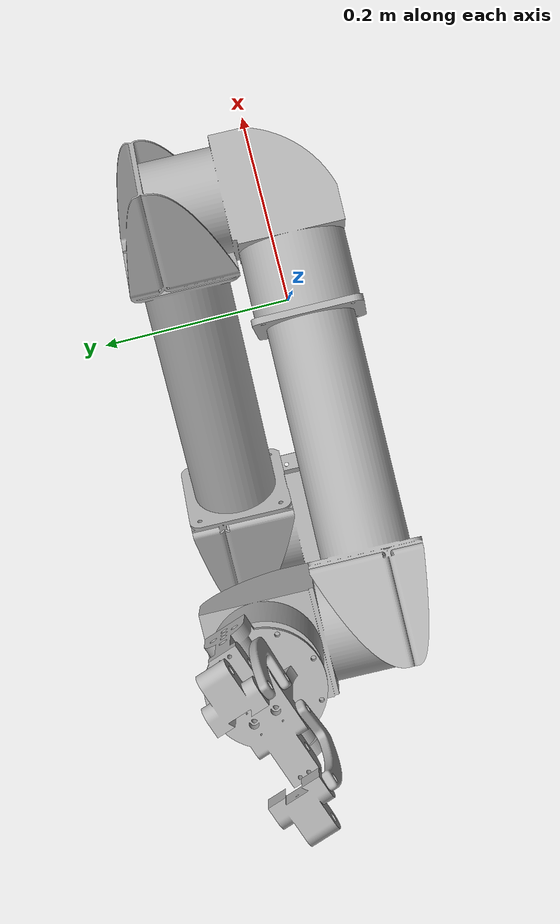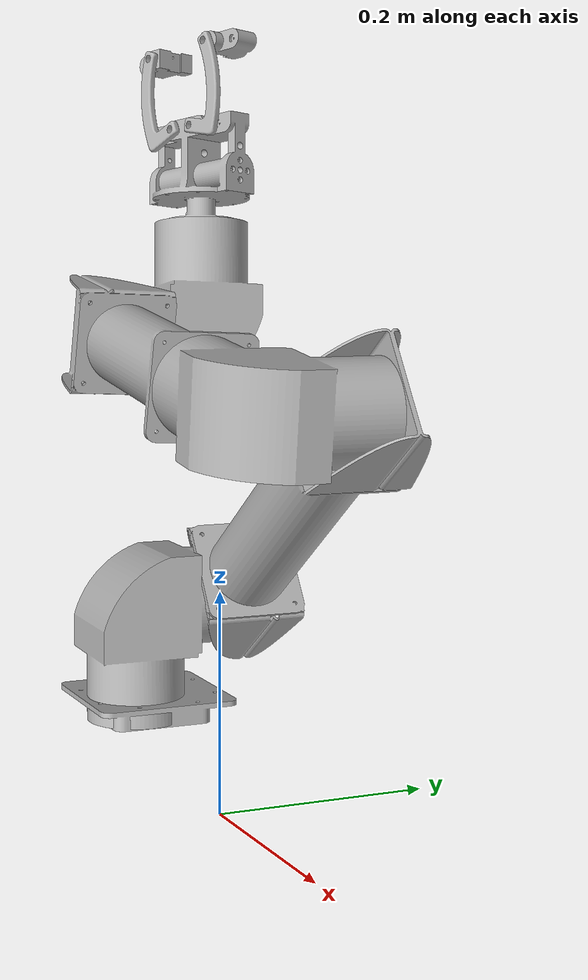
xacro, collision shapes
<?xml version="1.0" ?>
<robot name="kerby" xmlns:xacro="http://www.ros.org/wiki/xacro">

<xacro:include filename="$(find rover_description)/description/materials.xacro" />
<xacro:include filename="$(find rover_description)/description/kerby.trans" />
<xacro:include filename="$(find rover_description)/description/kerby.gazebo" />
<xacro:include filename="$(find rover_description)/description/inertial_macros.xacro" />
<xacro:include filename="$(find rover_description)/description/URDF3.urdf.xacro" />
<xacro:include filename="$(find rover_description)/description/ros2_control_arm.xacro" />

<link name="base_link"></link>

<joint name="chassis_joint" type="fixed">

    <parent link="base_link"/>
    <child link="chassis_link"/>
    <origin xyz="0 0 0 " rpy="0 0 0"/>
    <axis xyz="0.0 1.0 0.0"/>
  </joint>

<link name="chassis_link">
  <inertial>
    <origin xyz="0.05362398614035063 0.01974617698532859 0.037120813316089823" rpy="0 0 0"/>
    <mass value="50"/>
    <inertia ixx="0.340644" iyy="0.466541" izz="0.402706" ixy="0.000337" iyz="0.00055" ixz="-0.092411"/>
  </inertial>
  <visual>
    <origin xyz="0.05362398614035063 0.01974617698532859 0.037120813316089823" rpy="0 0 0"/>
    <geometry>
      <mesh filename="$(find rover_description)/meshes/base_link.stl" scale="0.001 0.001 0.001"/>
    </geometry>
    <material name="blue"/>
  </visual>
</link>

</robot>

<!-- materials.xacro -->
<robot name="URDF" xmlns:xacro="http://www.ros.org/wiki/xacro" >

<material name="silver">
  <color rgba="0.700 0.700 0.700 1.000"/>
</material>

</robot>

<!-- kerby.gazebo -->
<robot name="kerby" xmlns:xacro="http://www.ros.org/wiki/xacro" >

<xacro:property name="body_color" value="Gazebo/Grey" />

<gazebo reference="chassis_link">
  <material>${body_color}</material>
  <mu1>0.2</mu1>
  <mu2>0.2</mu2>
  <gravity>true</gravity>
</gazebo>

<gazebo reference="steering1_link">
  <material>${body_color}</material>
  <mu1>0.2</mu1>
  <mu2>0.2</mu2>
</gazebo>

<gazebo reference="steering2_link">
  <material>${body_color}</material>
  <mu1>0.2</mu1>
  <mu2>0.2</mu2>
</gazebo>

<gazebo reference="steering3_link">
  <material>${body_color}</material>
  <mu1>0.2</mu1>
  <mu2>0.2</mu2>
</gazebo>

<gazebo reference="steering4_link">
  <material>${body_color}</material>
  <mu1>0.2</mu1>
  <mu2>0.2</mu2>
</gazebo>

<gazebo reference="wheel3_link">
  <material>${body_color}</material>
  <mu1>0.2</mu1>
  <mu2>0.2</mu2>
</gazebo>

<gazebo reference="wheel4_link">
  <material>${body_color}</material>
  <mu1>0.2</mu1>
  <mu2>0.2</mu2>
</gazebo>

<gazebo reference="wheel2_link">
  <material>${body_color}</material>
  <mu1>0.2</mu1>
  <mu2>0.2</mu2>
</gazebo>

<gazebo reference="wheel1_link">
  <material>${body_color}</material>
  <mu1>0.2</mu1>
  <mu2>0.2</mu2>
</gazebo>

<gazebo reference="caster_wheel">
  <material>Gazebo/Grey</material>
  <mu1>0.2</mu1>
  <mu2>0.2</mu2>
</gazebo>

<gazebo reference="caster_axis">
  <material>Gazebo/Grey</material>
  <mu1>0.2</mu1>
  <mu2>0.2</mu2>
</gazebo>

  <gazebo reference="lidar_axis">
        <material>Gazebo/LightGrey</material>
  </gazebo>

// <gazebo reference="link1">
//   <mu1>0.2</mu1>
//   <mu2>0.2</mu2>
//   <selfCollide>true</selfCollide>
// </gazebo>

// <gazebo reference="link2">
//   <mu1>0.2</mu1>
//   <mu2>0.2</mu2>
//   <selfCollide>true</selfCollide>
// </gazebo>

// <gazebo reference="link3">
//   <mu1>0.2</mu1>
//   <mu2>0.2</mu2>
//   <selfCollide>true</selfCollide>
// </gazebo>

// <gazebo reference="link4">
//   <mu1>0.2</mu1>
//   <mu2>0.2</mu2>
//   <selfCollide>true</selfCollide>
// </gazebo>

// <gazebo reference="link5">
//   <mu1>0.2</mu1>
//   <mu2>0.2</mu2>
//   <selfCollide>true</selfCollide>
// </gazebo>

// <gazebo reference="link6">
//   <mu1>0.2</mu1>
//   <mu2>0.2</mu2>
//   <selfCollide>true</selfCollide>
// </gazebo>

// <gazebo reference="Arm_A_v6_2">
//   <mu1>0.2</mu1>
//   <mu2>0.2</mu2>
//   <selfCollide>true</selfCollide>
// </gazebo>

// <gazebo reference="Arm_A_v6_1">
//   <mu1>0.2</mu1>
//   <mu2>0.2</mu2>
//   <selfCollide>true</selfCollide>
// </gazebo>

// <gazebo reference="Finger_v1_2">
//   <mu1>0.2</mu1>
//   <mu2>0.2</mu2>
//   <selfCollide>true</selfCollide>
// </gazebo>

// <gazebo reference="Finger_v1_1">
//   <mu1>0.2</mu1>
//   <mu2>0.2</mu2>
//   <selfCollide>true</selfCollide>
// </gazebo>

<gazebo reference="right_leg">
  <material>${body_color}</material>
  <mu1>0.2</mu1>
  <mu2>0.2</mu2>
  <selfCollide>true</selfCollide>
</gazebo>

<gazebo reference="left_leg">
  <material>${body_color}</material>
  <mu1>0.2</mu1>
  <mu2>0.2</mu2>
  <selfCollide>true</selfCollide>
</gazebo>

</robot>

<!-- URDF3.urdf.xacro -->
<robot name="new_hd" xmlns:xacro="http://www.ros.org/wiki/xacro">

<xacro:include filename="$(find onyx_description)/description/URDF3.gazebo" />

<xacro:property name="rpm_to_Radps" value="${2*pi/60.0}" />     <!-- rotations per minute to Rad per second conversion -->
<xacro:property name="velocity_scaling" value="5.0" />     <!-- allows to scale all max velocities down at once -->

<xacro:macro name="aaa_joint_limits" params="lower:=0.0 upper:=0.0 velocity:=${rpm_to_Radps} effort:=100.0">
  <limit lower="${lower}" upper="${upper}" velocity="${velocity}" effort="${effort}"/>
</xacro:macro>

<xacro:property name="joint1_limits">
  <xacro:aaa_joint_limits lower="${-10*pi}" upper="${10*pi}" velocity="${1.83 * rpm_to_Radps * velocity_scaling}" />
</xacro:property>

<xacro:property name="joint2_limits">
  <xacro:aaa_joint_limits lower="${-10*pi}" upper="${10*pi}" velocity="${1.377 * rpm_to_Radps * velocity_scaling}" />
</xacro:property>

<xacro:property name="joint3_limits">
  <xacro:aaa_joint_limits lower="${-10*pi}" upper="${10*pi}" velocity="${1.377 * rpm_to_Radps * velocity_scaling}" />
</xacro:property>

<xacro:property name="joint4_limits">
  <xacro:aaa_joint_limits lower="${-10*pi}" upper="${10*pi}" velocity="${1.83 * rpm_to_Radps * velocity_scaling}" />
</xacro:property>

<xacro:property name="joint5_limits">
  <xacro:aaa_joint_limits lower="${-10*pi}" upper="${10*pi}" velocity="${1.83 * rpm_to_Radps * velocity_scaling}" />
</xacro:property>

<xacro:property name="joint6_limits">
  <xacro:aaa_joint_limits lower="${-10*pi}" upper="${10*pi}" velocity="${1.83 * rpm_to_Radps * velocity_scaling}" />
</xacro:property>

<joint name="hd_joint0" type="fixed">
  <origin xyz="-0.22 0 0.035484" rpy="0 0 ${pi}"/>
  <parent link="chassis_link"/>
  <child link="base"/>
</joint>

<link name="base">
  <inertial>
    <origin xyz="0 0.47 -0.12" rpy="${pi/2} 0 0"/>
    <mass value="1.001112718637754"/>
    <inertia ixx="0.00171" iyy="0.003332" izz="0.00171" ixy="-0.0" iyz="0.0" ixz="-0.0"/>
  </inertial>
  <visual>
    <origin xyz="0 0.47 -0.12" rpy="${pi/2} 0 0"/>
    <geometry>
      <mesh filename="package://onyx_description/meshes/new_hd/base_link.stl" scale="0.001 0.001 0.001"/>
    </geometry>
    <material name="silver"/>
  </visual>
  <collision>
    <origin xyz="0 0.47 -0.12" rpy="${pi/2} 0 0"/>
    <geometry>
      <mesh filename="package://onyx_description/meshes/new_hd/base_link.stl" scale="0.001 0.001 0.001"/>
    </geometry>
  </collision>
</link>

<link name="hd_link1">
  <inertial>
    <origin xyz="0.023340582081130535 0.09194845459261852 0.0126568969650096" rpy="0 0 0"/>
    <mass value="13.941603234564111"/>
    <inertia ixx="0.039361" iyy="0.035501" izz="0.048628" ixy="-0.009386" iyz="-0.00509" ixz="-0.007119"/>
  </inertial>
  <visual>
    <origin xyz="-0.007012 -0.143312 -0.484988" rpy="0 0 0"/>
    <geometry>
      <mesh filename="package://onyx_description/meshes/new_hd/link_1_1.stl" scale="0.001 0.001 0.001"/>
    </geometry>
    <material name="silver"/>
  </visual>
  <collision>
    <origin xyz="-0.007012 -0.143312 -0.484988" rpy="0 0 0"/>
    <geometry>
      <mesh filename="package://onyx_description/meshes/new_hd/link_1_1.stl" scale="0.001 0.001 0.001"/>
    </geometry>
  </collision>
</link>

<link name="hd_link2">
  <inertial>
    <origin xyz="-0.08423197746352788 0.10484954848092454 0.1284542941455662" rpy="0 0 0"/>
    <mass value="3.1130721114751427"/>
    <inertia ixx="0.055243" iyy="0.044626" izz="0.033179" ixy="0.012697" iyz="-0.023414" ixz="0.016949"/>
  </inertial>
  <visual>
    <origin xyz="-0.111181 -0.261812 -0.541477" rpy="0 0 0"/>
    <geometry>
      <mesh filename="package://onyx_description/meshes/new_hd/link_2_1.stl" scale="0.001 0.001 0.001"/>
    </geometry>
    <material name="silver"/>
  </visual>
  <collision>
    <origin xyz="-0.111181 -0.261812 -0.541477" rpy="0 0 0"/>
    <geometry>
      <mesh filename="package://onyx_description/meshes/new_hd/link_2_1.stl" scale="0.001 0.001 0.001"/>
    </geometry>
  </collision>
</link>

<link name="hd_link3">
  <inertial>
    <origin xyz="-0.06826283209546892 0.0031862398429799987 -0.06700337059280337" rpy="0 0 0"/>
    <mass value="13.941603234564111"/>
    <inertia ixx="0.04444" iyy="0.052244" izz="0.026806" ixy="0.000162" iyz="0.00239" ixz="-0.005885"/>
  </inertial>
  <visual>
    <origin xyz="0.034759 -0.471511 -0.8106" rpy="0 0 0"/>
    <geometry>
      <mesh filename="package://onyx_description/meshes/new_hd/link_3_1.stl" scale="0.001 0.001 0.001"/>
    </geometry>
    <material name="silver"/>
  </visual>
  <collision>
    <origin xyz="0.034759 -0.471511 -0.8106" rpy="0 0 0"/>
    <geometry>
      <mesh filename="package://onyx_description/meshes/new_hd/link_3_1.stl" scale="0.001 0.001 0.001"/>
    </geometry>
  </collision>
</link>

<link name="hd_link4">
  <inertial>
    <origin xyz="0.06826896232783315 0.01808291361303932 -0.13171586513395195" rpy="0 0 0"/>
    <mass value="2.3441890740360654"/>
    <inertia ixx="0.022767" iyy="0.026136" izz="0.00899" ixy="-0.001236" iyz="0.002399" ixz="0.009066"/>
  </inertial>
  <visual>
    <origin xyz="0.082848 -0.485732 -0.650695" rpy="0 0 0"/>
    <geometry>
      <mesh filename="package://onyx_description/meshes/new_hd/link_4_1.stl" scale="0.001 0.001 0.001"/>
    </geometry>
    <material name="silver"/>
  </visual>
  <collision>
    <origin xyz="0.082848 -0.485732 -0.650695" rpy="0 0 0"/>
    <geometry>
      <mesh filename="package://onyx_description/meshes/new_hd/link_4_1.stl" scale="0.001 0.001 0.001"/>
    </geometry>
  </collision>
</link>

<link name="hd_link5">
  <inertial>
    <origin xyz="0.08406378219626617 0.021222804231640358 0.04052714111106276" rpy="0 0 0"/>
    <mass value="13.941603234564111"/>
    <inertia ixx="0.036907" iyy="0.037003" izz="0.04958" ixy="-0.010349" iyz="-0.002873" ixz="-0.006458"/>
  </inertial>
  <visual>
    <origin xyz="-0.030684 -0.519236 -0.405724" rpy="0 0 0"/>
    <geometry>
      <mesh filename="package://onyx_description/meshes/new_hd/link_5_1.stl" scale="0.001 0.001 0.001"/>
    </geometry>
    <material name="silver"/>
  </visual>
  <collision>
    <origin xyz="-0.030684 -0.519236 -0.405724" rpy="0 0 0"/>
    <geometry>
      <mesh filename="package://onyx_description/meshes/new_hd/link_5_1.stl" scale="0.001 0.001 0.001"/>
    </geometry>
  </collision>
</link>

<link name="hd_link6">
  <inertial>
    <origin xyz="0.0068379243827132175 0.05694988563890202 -0.006998024700884231" rpy="0 0 0"/>
    <mass value="1.7329993951645233"/>
    <inertia ixx="0.003586" iyy="0.002091" izz="0.002336" ixy="-0.000155" iyz="-9e-06" ixz="0.000189"/>
  </inertial>
  <visual>
    <origin xyz="-0.148761 -0.629862 -0.449364" rpy="0 0 0"/>
    <geometry>
      <mesh filename="package://onyx_description/meshes/new_hd/link_6_1.stl" scale="0.001 0.001 0.001"/>
    </geometry>
    <material name="silver"/>
  </visual>
  <collision>
    <origin xyz="-0.148761 -0.629862 -0.449364" rpy="0 0 0"/>
    <geometry>
      <mesh filename="package://onyx_description/meshes/new_hd/link_6_1.stl" scale="0.001 0.001 0.001"/>
    </geometry>
  </collision>
</link>

<link name="Gripper_Arcs_v1_1">
  <inertial>
    <origin xyz="0.0032046409818504706 0.02179918196608699 -0.0327963271004742" rpy="0 0 0"/>
    <mass value="0.11098435196969862"/>
    <inertia ixx="0.000116" iyy="2.6e-05" izz="9.6e-05" ixy="-1.4e-05" iyz="3e-05" ixz="6e-06"/>
  </inertial>
  <visual>
    <origin xyz="-0.139762 -0.725909 -0.421506" rpy="0 0 0"/>
    <geometry>
      <mesh filename="package://onyx_description/meshes/new_hd/Gripper_Arcs_v1_1.stl" scale="0.001 0.001 0.001"/>
    </geometry>
    <material name="silver"/>
  </visual>
  <collision>
    <origin xyz="-0.139762 -0.725909 -0.421506" rpy="0 0 0"/>
    <geometry>
      <mesh filename="package://onyx_description/meshes/new_hd/Gripper_Arcs_v1_1.stl" scale="0.001 0.001 0.001"/>
    </geometry>
  </collision>
</link>

<link name="Gripper_Finger_v1_1">
  <inertial>
    <origin xyz="0.023381449181451852 -0.0033549268355534956 -0.005946789572352451" rpy="0 0 0"/>
    <mass value="0.21136162569656056"/>
    <inertia ixx="3.7e-05" iyy="5.6e-05" izz="3.4e-05" ixy="2e-06" iyz="-2e-06" ixz="0.0"/>
  </inertial>
  <visual>
    <origin xyz="-0.153478 -0.800615 -0.379727" rpy="0 0 0"/>
    <geometry>
      <mesh filename="package://onyx_description/meshes/new_hd/Gripper_Finger_v1_1.stl" scale="0.001 0.001 0.001"/>
    </geometry>
    <material name="silver"/>
  </visual>
  <collision>
    <origin xyz="-0.153478 -0.800615 -0.379727" rpy="0 0 0"/>
    <geometry>
      <mesh filename="package://onyx_description/meshes/new_hd/Gripper_Finger_v1_1.stl" scale="0.001 0.001 0.001"/>
    </geometry>
  </collision>
</link>

<link name="Gripper_Arcs_v1__2__1">
  <inertial>
    <origin xyz="-0.0037295922171562967 0.03252274690034984 0.022124051579247295" rpy="0 0 0"/>
    <mass value="0.11098435196969862"/>
    <inertia ixx="0.000117" iyy="1.3e-05" izz="0.000107" ixy="-1.1e-05" iyz="-0.0" ixz="2e-06"/>
  </inertial>
  <visual>
    <origin xyz="-0.135804 -0.729418 -0.451036" rpy="0 0 0"/>
    <geometry>
      <mesh filename="package://onyx_description/meshes/new_hd/Gripper_Arcs_v1__2__1.stl" scale="0.001 0.001 0.001"/>
    </geometry>
    <material name="silver"/>
  </visual>
  <collision>
    <origin xyz="-0.135804 -0.729418 -0.451036" rpy="0 0 0"/>
    <geometry>
      <mesh filename="package://onyx_description/meshes/new_hd/Gripper_Arcs_v1__2__1.stl" scale="0.001 0.001 0.001"/>
    </geometry>
  </collision>
</link>

<link name="Gripper_Finger_v1__1__1">
  <inertial>
    <origin xyz="0.020918878059417806 -0.0011722824247640817 0.012422973814116889" rpy="0 0 0"/>
    <mass value="0.21136162569656056"/>
    <inertia ixx="3.7e-05" iyy="5.6e-05" izz="3.4e-05" ixy="2e-06" iyz="-2e-06" ixz="0.0"/>
  </inertial>
  <visual>
    <origin xyz="-0.142591 -0.81484 -0.464138" rpy="0 0 0"/>
    <geometry>
      <mesh filename="package://onyx_description/meshes/new_hd/Gripper_Finger_v1__1__1.stl" scale="0.001 0.001 0.001"/>
    </geometry>
    <material name="silver"/>
  </visual>
  <collision>
    <origin xyz="-0.142591 -0.81484 -0.464138" rpy="0 0 0"/>
    <geometry>
      <mesh filename="package://onyx_description/meshes/new_hd/Gripper_Finger_v1__1__1.stl" scale="0.001 0.001 0.001"/>
    </geometry>
  </collision>
</link>

<joint name="hd_joint1" type="revolute">
  <origin xyz="0 0 0" rpy="${pi/2} 0 -1.091427"/>
  <parent link="base"/>
  <child link="hd_link1"/>
  <axis xyz="0 1 0"/>
  <xacro:insert_block name="joint1_limits"/>
</joint>

<joint name="hd_joint2" type="revolute">
  <origin xyz="0.104169 0.1185 0.056489" rpy="0 0 0"/>
  <parent link="hd_link1"/>
  <child link="hd_link2"/>
  <axis xyz="0.879067 0.0 0.476699"/>
  <xacro:insert_block name="joint2_limits"/>
</joint>

<joint name="hd_joint3" type="revolute">
  <origin xyz="-0.14594 0.209699 0.269123" rpy="0 0 0"/>
  <parent link="hd_link2"/>
  <child link="hd_link3"/>
  <axis xyz="-0.879067 -0.0 -0.476699"/>
  <xacro:insert_block name="joint3_limits"/>
</joint>

<joint name="hd_joint4" type="revolute">
  <origin xyz="-0.048089 0.014221 -0.159905" rpy="0 0 0"/>
  <parent link="hd_link3"/>
  <child link="hd_link4"/>
  <axis xyz="0.473254 0.120008 -0.872713"/>
  <xacro:insert_block name="joint4_limits"/>
</joint>

<joint name="hd_joint5" type="revolute">
  <origin xyz="0.113532 0.033504 -0.244971" rpy="0 0 0"/>
  <parent link="hd_link4"/>
  <child link="hd_link5"/>
  <axis xyz="0.880882 -0.054511 0.470187"/>
  <xacro:insert_block name="joint5_limits"/>
</joint>

<joint name="hd_joint6" type="revolute">
  <origin xyz="0.118077 0.110626 0.04364" rpy="0 0 0"/>
  <parent link="hd_link5"/>
  <child link="hd_link6"/>
  <axis xyz="0.115545 0.98806 -0.101919"/>
  <xacro:insert_block name="joint6_limits"/>
</joint>

<joint name="hd_joint7" type="fixed">
  <origin xyz="-0.008999 0.096047 -0.027858" rpy="0 0 0"/>
  <parent link="hd_link6"/>
  <child link="Gripper_Arcs_v1_1"/>
  <axis xyz="-0.9845 0.100287 -0.14388"/>
</joint>

<joint name="hd_joint8" type="fixed">
  <origin xyz="0.013716 0.074706 -0.041779" rpy="0 0 0"/>
  <parent link="Gripper_Arcs_v1_1"/>
  <child link="Gripper_Finger_v1_1"/>
  <axis xyz="0.9845 -0.100287 0.14388"/>
</joint>

<joint name="hd_joint9" type="fixed">
  <origin xyz="-0.012957 0.099556 0.001672" rpy="0 0 0"/>
  <parent link="hd_link6"/>
  <child link="Gripper_Arcs_v1__2__1"/>
  <axis xyz="-0.9845 0.100287 -0.14388"/>
</joint>

<joint name="hd_joint10" type="fixed">
  <origin xyz="0.006787 0.085422 0.013102" rpy="0 0 0"/>
  <parent link="Gripper_Arcs_v1__2__1"/>
  <child link="Gripper_Finger_v1__1__1"/>
  <axis xyz="0.9845 -0.100287 0.14388"/>
</joint>

</robot>

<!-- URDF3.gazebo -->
<robot name="URDF3" xmlns:xacro="http://www.ros.org/wiki/xacro" >

<xacro:property name="body_color" value="Gazebo/Blue" />

<gazebo>
  <plugin name="control" filename="libgazebo_ros_control.so"/>
</gazebo>
<gazebo reference="base">
  <material>Gazebo/Red</material>
  <mu1>0.2</mu1>
  <mu2>0.2</mu2>
  // <selfCollide>true</selfCollide>
  // <gravity>true</gravity>
</gazebo>

<gazebo reference="hd_link1">
  <material>${body_color}</material>
  <mu1>0.2</mu1>
  <mu2>0.2</mu2>
  // <selfCollide>true</selfCollide>
</gazebo>

<gazebo reference="hd_link2">
  <material>Gazebo/Red</material>
  <mu1>0.2</mu1>
  <mu2>0.2</mu2>
  // <selfCollide>true</selfCollide>
</gazebo>

<gazebo reference="hd_link3">
  <material>${body_color}</material>
  <mu1>0.2</mu1>
  <mu2>0.2</mu2>
  // <selfCollide>true</selfCollide>
</gazebo>

<gazebo reference="hd_link4">
  <material>Gazebo/Red</material>
  <mu1>0.2</mu1>
  <mu2>0.2</mu2>
  // <selfCollide>true</selfCollide>
</gazebo>

<gazebo reference="hd_link5">
  <material>${body_color}</material>
  <mu1>0.2</mu1>
  <mu2>0.2</mu2>
  // <selfCollide>true</selfCollide>
</gazebo>

<gazebo reference="hd_link6">
  <material>Gazebo/Red</material>
  <mu1>0.2</mu1>
  <mu2>0.2</mu2>
  // <selfCollide>true</selfCollide>
</gazebo>

<gazebo reference="Gripper_Arcs_v1_1">
  <material>${body_color}</material>
  <mu1>0.2</mu1>
  <mu2>0.2</mu2>
  <selfCollide>true</selfCollide>
</gazebo>

<gazebo reference="Gripper_Finger_v1_1">
  <material>Gazebo/Red</material>
  <mu1>0.2</mu1>
  <mu2>0.2</mu2>
  // <selfCollide>true</selfCollide>
</gazebo>

<gazebo reference="Gripper_Arcs_v1__2__1">
  <material>${body_color}</material>
  <mu1>0.2</mu1>
  <mu2>0.2</mu2>
  // <selfCollide>true</selfCollide>
</gazebo>

<gazebo reference="Gripper_Finger_v1__1__1">
  <material>Gazebo/Red</material>
  <mu1>0.2</mu1>
  <mu2>0.2</mu2>
  // <selfCollide>true</selfCollide>
</gazebo>

</robot>
